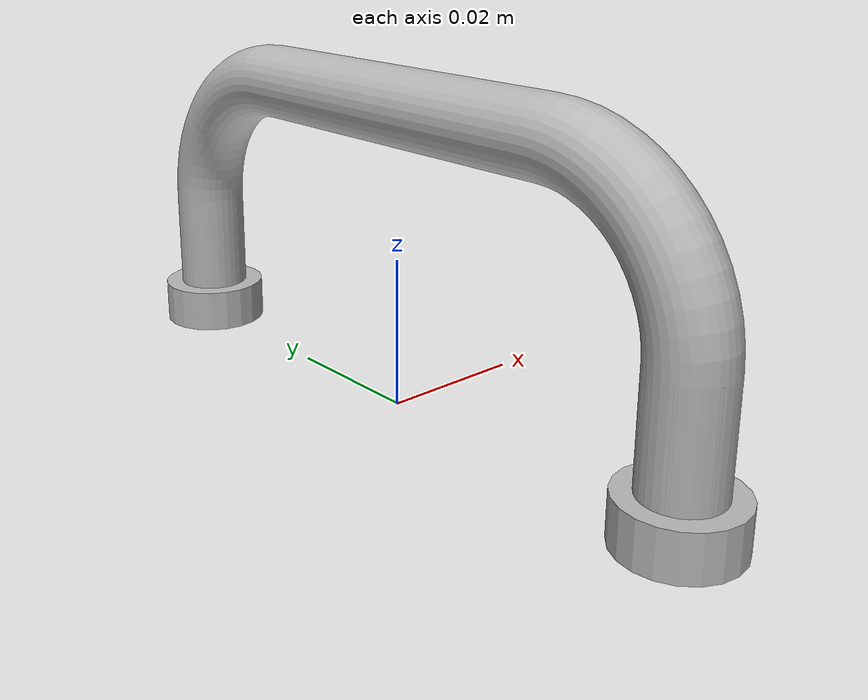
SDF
<?xml version='1.0'?>
<sdf version='1.5'>
  <model name="door_puller_knob">
      <link name="body">
      <inertial>
        <!-- Volume-->
        <mass> 0.1 </mass>
        <!-- Center of mass: -->
        <pose>-0.000029461 0.000062691 0.027216509 0 0 0</pose>
      </inertial>

        <visual name="visual">
          <geometry>
            <mesh><uri>model://door/door_puller_knob.dae</uri></mesh>
          </geometry>
        </visual>

        <collision name="collision">
          <geometry>
          <box>
            <size>0.01 0.1 0.04</size>
          </box>
          </geometry>
        </collision>
      </link>
  </model>
</sdf>
